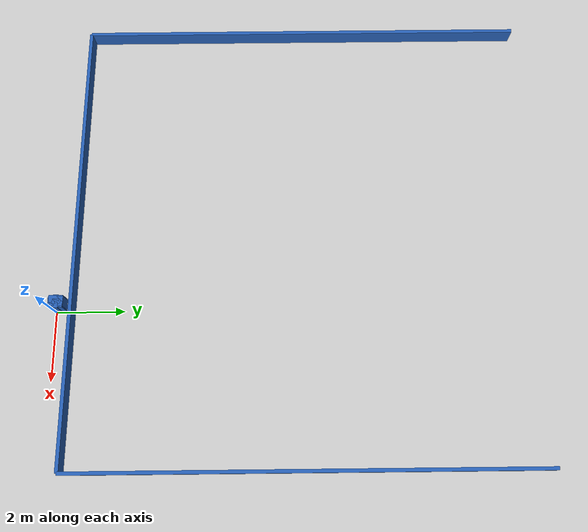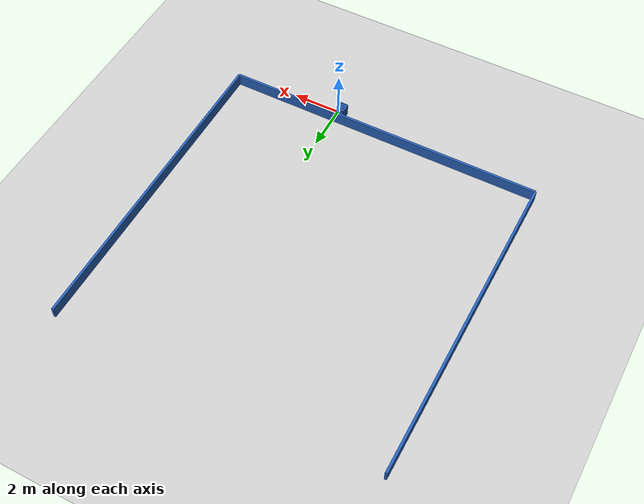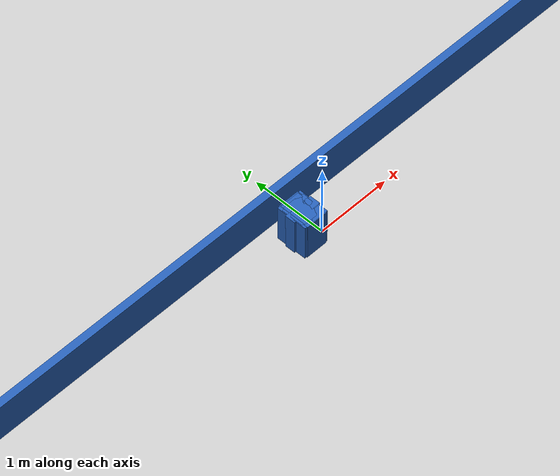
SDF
<?xml version="1.0" ?>
    <sdf version="1.5">
      <world name="default">
        <!-- A global light source -->
        <include>
          <uri>model://sun</uri>
        </include>
        <!-- A ground plane -->
        <include>
          <uri>model://ground_plane</uri>
        </include>

    <model name='libopen_space_final_T2B_77_58'>
      <static>1</static>
      <pose frame=''>-0.225000 0.075000 0.000000 0.000000 0.000000 0.000000</pose>
      <link name='link'>
        <inertial>
          <mass>1</mass>
          <inertia>
            <ixx>0.145833</ixx>
            <ixy>0</ixy>
            <ixz>0</ixz>
            <iyy>0.145833</iyy>
            <iyz>0</iyz>
            <izz>0.125</izz>
          </inertia>
        </inertial>
        <collision name='collision'>
          <geometry>
            <box>
              <size>0.27 0.40 1</size>
            </box>
          </geometry>
          <max_contacts>10</max_contacts>
          <surface>
            <contact>
              <ode/>
            </contact>
            <bounce/>
            <friction>
              <torsional>
                <ode/>
              </torsional>
              <ode/>
            </friction>
          </surface>
        </collision>
        <visual name='visual'>
          <geometry>
            <box>
              <size>0.27 0.40 1</size>
            </box>
          </geometry>
	    <material>
              <ambient>0.152000 0.379000 0.720000 1</ambient>
	      <diffuse>0.152000 0.379000 0.720000 1</diffuse>
          </material>
          <material>
            <script>
              <name>Gazebo/Grey</name>
              <uri>file://media/materials/scripts/gazebo.material</uri>
            </script>
          </material>
        </visual>
        <self_collide>0</self_collide>
        <kinematic>0</kinematic>
        <gravity>1</gravity>
      </link>
      <plugin name='libopen_space_final_T2B_77_58' filename='libopen_space_final_T2B_77_58.so'/>
    </model>

    <model name='libopen_space_final_T2B_51_19'>
      <static>1</static>
      <pose frame=''>-0.225000 0.075000 0.000000 0.000000 0.000000 0.000000</pose>
      <link name='link'>
        <inertial>
          <mass>1</mass>
          <inertia>
            <ixx>0.145833</ixx>
            <ixy>0</ixy>
            <ixz>0</ixz>
            <iyy>0.145833</iyy>
            <iyz>0</iyz>
            <izz>0.125</izz>
          </inertia>
        </inertial>
        <collision name='collision'>
          <geometry>
            <box>
              <size>0.33 0.24 1</size>
            </box>
          </geometry>
          <max_contacts>10</max_contacts>
          <surface>
            <contact>
              <ode/>
            </contact>
            <bounce/>
            <friction>
              <torsional>
                <ode/>
              </torsional>
              <ode/>
            </friction>
          </surface>
        </collision>
        <visual name='visual'>
          <geometry>
            <box>
              <size>0.33 0.24 1</size>
            </box>
          </geometry>
	    <material>
              <ambient>0.152000 0.379000 0.720000 1</ambient>
	      <diffuse>0.152000 0.379000 0.720000 1</diffuse>
          </material>
          <material>
            <script>
              <name>Gazebo/Grey</name>
              <uri>file://media/materials/scripts/gazebo.material</uri>
            </script>
          </material>
        </visual>
        <self_collide>0</self_collide>
        <kinematic>0</kinematic>
        <gravity>1</gravity>
      </link>
      <plugin name='libopen_space_final_T2B_51_19' filename='libopen_space_final_T2B_51_19.so'/>
    </model>

    <model name='libopen_space_final_T2B_123_13'>
      <static>1</static>
      <pose frame=''>-0.225000 0.075000 0.000000 0.000000 0.000000 0.000000</pose>
      <link name='link'>
        <inertial>
          <mass>1</mass>
          <inertia>
            <ixx>0.145833</ixx>
            <ixy>0</ixy>
            <ixz>0</ixz>
            <iyy>0.145833</iyy>
            <iyz>0</iyz>
            <izz>0.125</izz>
          </inertia>
        </inertial>
        <collision name='collision'>
          <geometry>
            <box>
              <size>0.35 0.41 1</size>
            </box>
          </geometry>
          <max_contacts>10</max_contacts>
          <surface>
            <contact>
              <ode/>
            </contact>
            <bounce/>
            <friction>
              <torsional>
                <ode/>
              </torsional>
              <ode/>
            </friction>
          </surface>
        </collision>
        <visual name='visual'>
          <geometry>
            <box>
              <size>0.35 0.41 1</size>
            </box>
          </geometry>
	    <material>
              <ambient>0.152000 0.379000 0.720000 1</ambient>
	      <diffuse>0.152000 0.379000 0.720000 1</diffuse>
          </material>
          <material>
            <script>
              <name>Gazebo/Grey</name>
              <uri>file://media/materials/scripts/gazebo.material</uri>
            </script>
          </material>
        </visual>
        <self_collide>0</self_collide>
        <kinematic>0</kinematic>
        <gravity>1</gravity>
      </link>
      <plugin name='libopen_space_final_T2B_123_13' filename='libopen_space_final_T2B_123_13.so'/>
    </model>

    <model name='libopen_space_final_T2B_125_59'>
      <static>1</static>
      <pose frame=''>-0.225000 0.075000 0.000000 0.000000 0.000000 0.000000</pose>
      <link name='link'>
        <inertial>
          <mass>1</mass>
          <inertia>
            <ixx>0.145833</ixx>
            <ixy>0</ixy>
            <ixz>0</ixz>
            <iyy>0.145833</iyy>
            <iyz>0</iyz>
            <izz>0.125</izz>
          </inertia>
        </inertial>
        <collision name='collision'>
          <geometry>
            <box>
              <size>0.39 0.14 1</size>
            </box>
          </geometry>
          <max_contacts>10</max_contacts>
          <surface>
            <contact>
              <ode/>
            </contact>
            <bounce/>
            <friction>
              <torsional>
                <ode/>
              </torsional>
              <ode/>
            </friction>
          </surface>
        </collision>
        <visual name='visual'>
          <geometry>
            <box>
              <size>0.39 0.14 1</size>
            </box>
          </geometry>
	    <material>
              <ambient>0.152000 0.379000 0.720000 1</ambient>
	      <diffuse>0.152000 0.379000 0.720000 1</diffuse>
          </material>
          <material>
            <script>
              <name>Gazebo/Grey</name>
              <uri>file://media/materials/scripts/gazebo.material</uri>
            </script>
          </material>
        </visual>
        <self_collide>0</self_collide>
        <kinematic>0</kinematic>
        <gravity>1</gravity>
      </link>
      <plugin name='libopen_space_final_T2B_125_59' filename='libopen_space_final_T2B_125_59.so'/>
    </model>

    <model name='libopen_space_final_T2B_51_1'>
      <static>1</static>
      <pose frame=''>-0.225000 0.075000 0.000000 0.000000 0.000000 0.000000</pose>
      <link name='link'>
        <inertial>
          <mass>1</mass>
          <inertia>
            <ixx>0.145833</ixx>
            <ixy>0</ixy>
            <ixz>0</ixz>
            <iyy>0.145833</iyy>
            <iyz>0</iyz>
            <izz>0.125</izz>
          </inertia>
        </inertial>
        <collision name='collision'>
          <geometry>
            <box>
              <size>0.31 0.16 1</size>
            </box>
          </geometry>
          <max_contacts>10</max_contacts>
          <surface>
            <contact>
              <ode/>
            </contact>
            <bounce/>
            <friction>
              <torsional>
                <ode/>
              </torsional>
              <ode/>
            </friction>
          </surface>
        </collision>
        <visual name='visual'>
          <geometry>
            <box>
              <size>0.31 0.16 1</size>
            </box>
          </geometry>
	    <material>
              <ambient>0.152000 0.379000 0.720000 1</ambient>
	      <diffuse>0.152000 0.379000 0.720000 1</diffuse>
          </material>
          <material>
            <script>
              <name>Gazebo/Grey</name>
              <uri>file://media/materials/scripts/gazebo.material</uri>
            </script>
          </material>
        </visual>
        <self_collide>0</self_collide>
        <kinematic>0</kinematic>
        <gravity>1</gravity>
      </link>
      <plugin name='libopen_space_final_T2B_51_1' filename='libopen_space_final_T2B_51_1.so'/>
    </model>

    <model name='libopen_space_final_T2B_67_46'>
      <static>1</static>
      <pose frame=''>-0.225000 0.075000 0.000000 0.000000 0.000000 0.000000</pose>
      <link name='link'>
        <inertial>
          <mass>1</mass>
          <inertia>
            <ixx>0.145833</ixx>
            <ixy>0</ixy>
            <ixz>0</ixz>
            <iyy>0.145833</iyy>
            <iyz>0</iyz>
            <izz>0.125</izz>
          </inertia>
        </inertial>
        <collision name='collision'>
          <geometry>
            <box>
              <size>0.10 0.20 1</size>
            </box>
          </geometry>
          <max_contacts>10</max_contacts>
          <surface>
            <contact>
              <ode/>
            </contact>
            <bounce/>
            <friction>
              <torsional>
                <ode/>
              </torsional>
              <ode/>
            </friction>
          </surface>
        </collision>
        <visual name='visual'>
          <geometry>
            <box>
              <size>0.10 0.20 1</size>
            </box>
          </geometry>
	    <material>
              <ambient>0.152000 0.379000 0.720000 1</ambient>
	      <diffuse>0.152000 0.379000 0.720000 1</diffuse>
          </material>
          <material>
            <script>
              <name>Gazebo/Grey</name>
              <uri>file://media/materials/scripts/gazebo.material</uri>
            </script>
          </material>
        </visual>
        <self_collide>0</self_collide>
        <kinematic>0</kinematic>
        <gravity>1</gravity>
      </link>
      <plugin name='libopen_space_final_T2B_67_46' filename='libopen_space_final_T2B_67_46.so'/>
    </model>

    <model name='libopen_space_final_T2B_94_31'>
      <static>1</static>
      <pose frame=''>-0.225000 0.075000 0.000000 0.000000 0.000000 0.000000</pose>
      <link name='link'>
        <inertial>
          <mass>1</mass>
          <inertia>
            <ixx>0.145833</ixx>
            <ixy>0</ixy>
            <ixz>0</ixz>
            <iyy>0.145833</iyy>
            <iyz>0</iyz>
            <izz>0.125</izz>
          </inertia>
        </inertial>
        <collision name='collision'>
          <geometry>
            <box>
              <size>0.14 0.19 1</size>
            </box>
          </geometry>
          <max_contacts>10</max_contacts>
          <surface>
            <contact>
              <ode/>
            </contact>
            <bounce/>
            <friction>
              <torsional>
                <ode/>
              </torsional>
              <ode/>
            </friction>
          </surface>
        </collision>
        <visual name='visual'>
          <geometry>
            <box>
              <size>0.14 0.19 1</size>
            </box>
          </geometry>
	    <material>
              <ambient>0.152000 0.379000 0.720000 1</ambient>
	      <diffuse>0.152000 0.379000 0.720000 1</diffuse>
          </material>
          <material>
            <script>
              <name>Gazebo/Grey</name>
              <uri>file://media/materials/scripts/gazebo.material</uri>
            </script>
          </material>
        </visual>
        <self_collide>0</self_collide>
        <kinematic>0</kinematic>
        <gravity>1</gravity>
      </link>
      <plugin name='libopen_space_final_T2B_94_31' filename='libopen_space_final_T2B_94_31.so'/>
    </model>

    <model name='libopen_space_final_T2B_115_72'>
      <static>1</static>
      <pose frame=''>-0.225000 0.075000 0.000000 0.000000 0.000000 0.000000</pose>
      <link name='link'>
        <inertial>
          <mass>1</mass>
          <inertia>
            <ixx>0.145833</ixx>
            <ixy>0</ixy>
            <ixz>0</ixz>
            <iyy>0.145833</iyy>
            <iyz>0</iyz>
            <izz>0.125</izz>
          </inertia>
        </inertial>
        <collision name='collision'>
          <geometry>
            <box>
              <size>0.29 0.43 1</size>
            </box>
          </geometry>
          <max_contacts>10</max_contacts>
          <surface>
            <contact>
              <ode/>
            </contact>
            <bounce/>
            <friction>
              <torsional>
                <ode/>
              </torsional>
              <ode/>
            </friction>
          </surface>
        </collision>
        <visual name='visual'>
          <geometry>
            <box>
              <size>0.29 0.43 1</size>
            </box>
          </geometry>
	    <material>
              <ambient>0.152000 0.379000 0.720000 1</ambient>
	      <diffuse>0.152000 0.379000 0.720000 1</diffuse>
          </material>
          <material>
            <script>
              <name>Gazebo/Grey</name>
              <uri>file://media/materials/scripts/gazebo.material</uri>
            </script>
          </material>
        </visual>
        <self_collide>0</self_collide>
        <kinematic>0</kinematic>
        <gravity>1</gravity>
      </link>
      <plugin name='libopen_space_final_T2B_115_72' filename='libopen_space_final_T2B_115_72.so'/>
    </model>

    <model name='libopen_space_final_T2B_85_62'>
      <static>1</static>
      <pose frame=''>-0.225000 0.075000 0.000000 0.000000 0.000000 0.000000</pose>
      <link name='link'>
        <inertial>
          <mass>1</mass>
          <inertia>
            <ixx>0.145833</ixx>
            <ixy>0</ixy>
            <ixz>0</ixz>
            <iyy>0.145833</iyy>
            <iyz>0</iyz>
            <izz>0.125</izz>
          </inertia>
        </inertial>
        <collision name='collision'>
          <geometry>
            <box>
              <size>0.27 0.33 1</size>
            </box>
          </geometry>
          <max_contacts>10</max_contacts>
          <surface>
            <contact>
              <ode/>
            </contact>
            <bounce/>
            <friction>
              <torsional>
                <ode/>
              </torsional>
              <ode/>
            </friction>
          </surface>
        </collision>
        <visual name='visual'>
          <geometry>
            <box>
              <size>0.27 0.33 1</size>
            </box>
          </geometry>
	    <material>
              <ambient>0.152000 0.379000 0.720000 1</ambient>
	      <diffuse>0.152000 0.379000 0.720000 1</diffuse>
          </material>
          <material>
            <script>
              <name>Gazebo/Grey</name>
              <uri>file://media/materials/scripts/gazebo.material</uri>
            </script>
          </material>
        </visual>
        <self_collide>0</self_collide>
        <kinematic>0</kinematic>
        <gravity>1</gravity>
      </link>
      <plugin name='libopen_space_final_T2B_85_62' filename='libopen_space_final_T2B_85_62.so'/>
    </model>

    <model name='libopen_space_final_T2B_56_75'>
      <static>1</static>
      <pose frame=''>-0.225000 0.075000 0.000000 0.000000 0.000000 0.000000</pose>
      <link name='link'>
        <inertial>
          <mass>1</mass>
          <inertia>
            <ixx>0.145833</ixx>
            <ixy>0</ixy>
            <ixz>0</ixz>
            <iyy>0.145833</iyy>
            <iyz>0</iyz>
            <izz>0.125</izz>
          </inertia>
        </inertial>
        <collision name='collision'>
          <geometry>
            <box>
              <size>0.33 0.30 1</size>
            </box>
          </geometry>
          <max_contacts>10</max_contacts>
          <surface>
            <contact>
              <ode/>
            </contact>
            <bounce/>
            <friction>
              <torsional>
                <ode/>
              </torsional>
              <ode/>
            </friction>
          </surface>
        </collision>
        <visual name='visual'>
          <geometry>
            <box>
              <size>0.33 0.30 1</size>
            </box>
          </geometry>
	    <material>
              <ambient>0.152000 0.379000 0.720000 1</ambient>
	      <diffuse>0.152000 0.379000 0.720000 1</diffuse>
          </material>
          <material>
            <script>
              <name>Gazebo/Grey</name>
              <uri>file://media/materials/scripts/gazebo.material</uri>
            </script>
          </material>
        </visual>
        <self_collide>0</self_collide>
        <kinematic>0</kinematic>
        <gravity>1</gravity>
      </link>
      <plugin name='libopen_space_final_T2B_56_75' filename='libopen_space_final_T2B_56_75.so'/>
    </model>

        <model name='bottom_wall'>
          <static>1</static>
          <pose frame=''>-2.25 0.5 0.000000 0.000000 0.000000 1.57079632</pose>
          <link name='link'>
            <inertial>
            <mass>1</mass>
            <inertia>
              <ixx>0.145833</ixx>
              <ixy>0</ixy>
              <ixz>0</ixz>
              <iyy>0.145833</iyy>
              <iyz>0</iyz>
              <izz>0.125</izz>
            </inertia>
            </inertial>
            <collision name='collision'>
            <geometry>
              <box>
              <size>0.1 13.5 1</size>
              </box>
            </geometry>
            <max_contacts>10</max_contacts>
            <surface>
              <contact>
              <ode/>
              </contact>
              <bounce/>
              <friction>
              <torsional>
                <ode/>
              </torsional>
              <ode/>
              </friction>
            </surface>
            </collision>
            <visual name='visual'>
            <geometry>
              <box>
              <size>0.1 13.5 1</size>
              </box>
            </geometry>
            <material>
              <ambient>0.152000 0.379000 0.720000 1</ambient>
            <diffuse>0.152000 0.379000 0.720000 1</diffuse>
            </material>
            <material>
              <script>
              <name>Gazebo/Grey</name>
              <uri>file://media/materials/scripts/gazebo.material</uri>
              </script>
            </material>
            </visual>
            <self_collide>0</self_collide>
            <kinematic>0</kinematic>
            <gravity>1</gravity>
          </link>
        </model>

        <model name='left_wall'>
          <static>1</static>
          <pose frame=''>-9 7.25 0.000000 0.000000 0.000000 0.000000</pose>
          <link name='link'>
            <inertial>
            <mass>1</mass>
            <inertia>
              <ixx>0.145833</ixx>
              <ixy>0</ixy>
              <ixz>0</ixz>
              <iyy>0.145833</iyy>
              <iyz>0</iyz>
              <izz>0.125</izz>
            </inertia>
            </inertial>
            <collision name='collision'>
            <geometry>
              <box>
              <size>0.1 13.5 1</size>
              </box>
            </geometry>
            <max_contacts>10</max_contacts>
            <surface>
              <contact>
              <ode/>
              </contact>
              <bounce/>
              <friction>
              <torsional>
                <ode/>
              </torsional>
              <ode/>
              </friction>
            </surface>
            </collision>
            <visual name='visual'>
            <geometry>
              <box>
              <size>0.1 13.5 1</size>
              </box>
            </geometry>
            <material>
              <ambient>0.152000 0.379000 0.720000 1</ambient>
            <diffuse>0.152000 0.379000 0.720000 1</diffuse>
            </material>
            <material>
              <script>
              <name>Gazebo/Grey</name>
              <uri>file://media/materials/scripts/gazebo.material</uri>
              </script>
            </material>
            </visual>
            <self_collide>0</self_collide>
            <kinematic>0</kinematic>
            <gravity>1</gravity>
          </link>
        </model>

        <model name='right_wall'>
          <static>1</static>
          <pose frame=''>4.5 7.25 0.000000 0.000000 0.000000 0.000000</pose>
          <link name='link'>
            <inertial>
            <mass>1</mass>
            <inertia>
              <ixx>0.145833</ixx>
              <ixy>0</ixy>
              <ixz>0</ixz>
              <iyy>0.145833</iyy>
              <iyz>0</iyz>
              <izz>0.125</izz>
            </inertia>
            </inertial>
            <collision name='collision'>
            <geometry>
              <box>
              <size>0.1 13.5 1</size>
              </box>
            </geometry>
            <max_contacts>10</max_contacts>
            <surface>
              <contact>
              <ode/>
              </contact>
              <bounce/>
              <friction>
              <torsional>
                <ode/>
              </torsional>
              <ode/>
              </friction>
            </surface>
            </collision>
            <visual name='visual'>
            <geometry>
              <box>
              <size>0.1 13.5 1</size>
              </box>
            </geometry>
            <material>
              <ambient>0.152000 0.379000 0.720000 1</ambient>
            <diffuse>0.152000 0.379000 0.720000 1</diffuse>
            </material>
            <material>
              <script>
              <name>Gazebo/Grey</name>
              <uri>file://media/materials/scripts/gazebo.material</uri>
              </script>
            </material>
            </visual>
            <self_collide>0</self_collide>
            <kinematic>0</kinematic>
            <gravity>1</gravity>
          </link>
        </model>

      </world>
    </sdf>"
